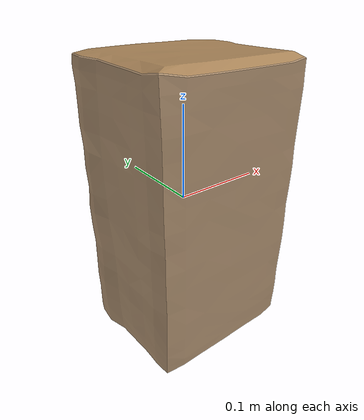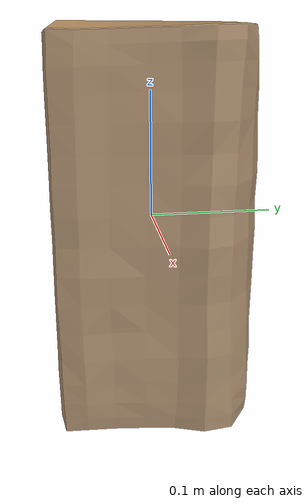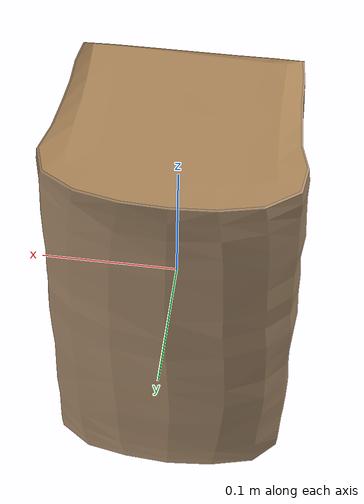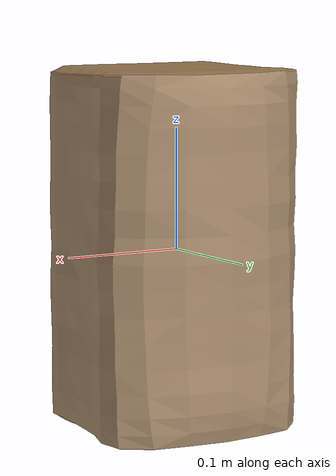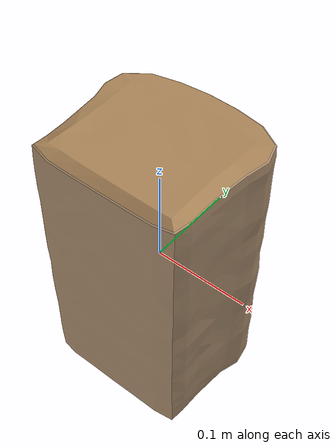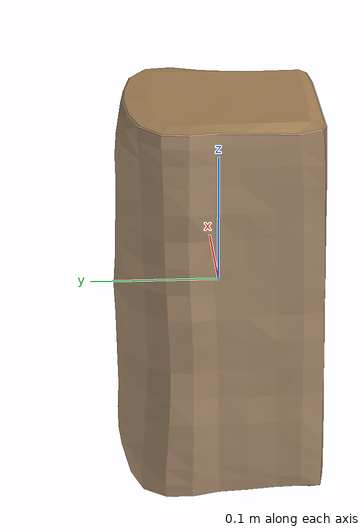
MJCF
<mujoco model="Bread_30">
  <compiler autolimits="true" boundmass="0.01" angle="radian"/>
  <default>
    <default class="/">
      <default class="__VISUAL_MJT__">
        <geom contype="0" conaffinity="0" group="0"/>
      </default>
      <default class="__STRUCTURAL_MJT__">
        <geom contype="8" conaffinity="15" group="4" friction="0.90000000000000002 0.90000000000000002 0.001" solref="0.025000000000000001 1" solimp="0.998 0.998 0.001"/>
      </default>
      <default class="__DYNAMIC_MJT__">
        <geom contype="1" conaffinity="15" group="4" friction="0.90000000000000002 0.90000000000000002 0.001" solref="0.025000000000000001 1" solimp="0.998 0.998 0.001"/>
      </default>
    </default>
  </default>
  <asset>
    <texture name="BreadSlice_Mat2" type="2d" file="BreadSlice_AlbedoTransparency.png"/>
    <material name="material_BreadSlice_Mat2" class="/" texture="BreadSlice_Mat2" specular="0.5" shininess="0.5" rgba="0.87735850000000004 0.71302310000000002 0.50075650000000005 1"/>
    <texture name="WhiteBread_Mat3" type="2d" file="WhiteBread_AlbedoTransparency.png"/>
    <material name="material_WhiteBread_Mat3" class="/" texture="WhiteBread_Mat3" specular="0.5" shininess="0.5" rgba="0.72058820000000001 0.59525269999999997 0.4609645 1"/>
    <mesh name="Bread_30_whitebread_c_mesh_0" class="/" file="Bread_30_whitebread_c_mesh/Bread_30_whitebread_c_mesh_0.obj" scale="1 1 1"/>
    <mesh name="Bread_30_whitebread_c_mesh_1" class="/" file="Bread_30_whitebread_c_mesh/Bread_30_whitebread_c_mesh_1.obj" scale="1 1 1"/>
  </asset>
  <worldbody>
    <body name="Bread_30">
      <joint name="Bread_30_free" class="/" type="free" pos="0 0 0" axis="0 0 1" stiffness="0" range="0 0" armature="0" damping="0.10000000000000001" frictionloss="0"/>
      <body name="Bread_30_whitebread_c_mesh" pos="-0 -0.00728 0" quat="1 0 0 0">
        <geom name="Bread_30_whitebread_c_mesh_0" class="__VISUAL_MJT__" type="mesh" material="material_BreadSlice_Mat2" shellinertia="false" mesh="Bread_30_whitebread_c_mesh_0"/>
        <geom name="Bread_30_whitebread_c_mesh_1" class="__VISUAL_MJT__" type="mesh" material="material_WhiteBread_Mat3" shellinertia="false" mesh="Bread_30_whitebread_c_mesh_1"/>
        <geom name="Bread_30_PrimitiveCollider_0" class="__DYNAMIC_MJT__" type="box" size="0.090227395296096802 0.080076217651367188 0.15299569070339203" rgba="0 1 0 1" pos="-0 0.0072803497314453125 0" quat="1 0 0 0"/>
      </body>
    </body>
  </worldbody>
</mujoco>
